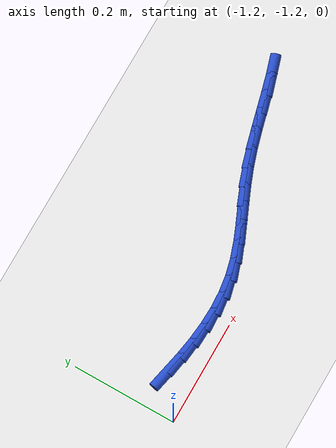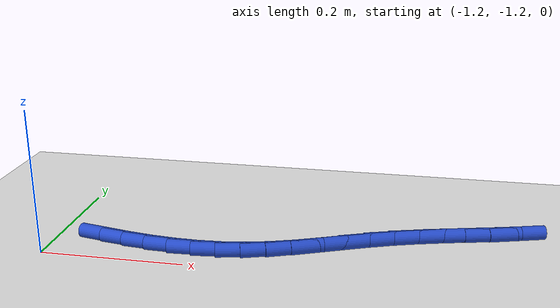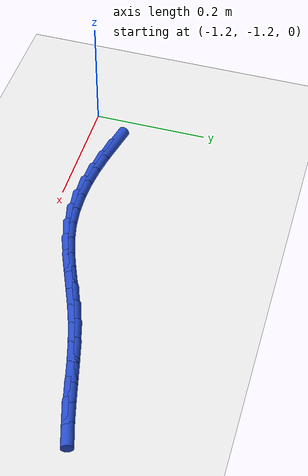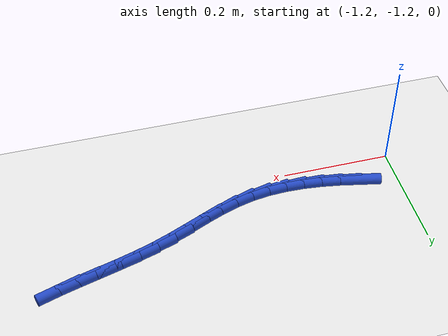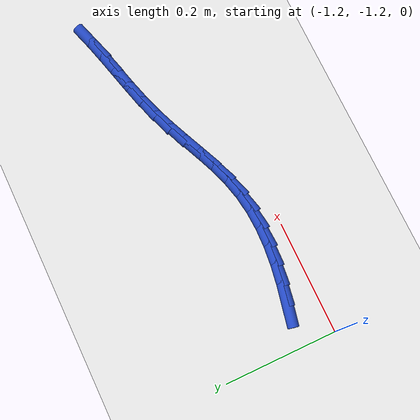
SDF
<sdf version="1.6">
 <world name="default">
  <model name="ground_plane">
   <static>1</static>
   <link name="link">
    <collision name="collision">
     <geometry><plane><normal>0 0 1</normal><size>100 100</size></plane></geometry>
     <surface><friction><ode><mu>100</mu><mu2>50</mu2></ode></friction></surface>
    </collision>
    <visual name="visual">
     <cast_shadows>0</cast_shadows>
     <geometry><plane><normal>0 0 1</normal><size>100 100</size></plane></geometry>
     <material>
      <script><uri>file://media/materials/scripts/gazebo.material</uri><name>Gazebo/WhiteGlow</name></script>
     </material>
    </visual>
   </link>
  </model>
  <model name="line">
   <link name="link_167">
    <pose>-1.1258394624215007 -1.1477894424663495 0.01 0 1.57 -0.21083913614385222</pose>
    <collision name="collision">
     <geometry><cylinder><radius>0.01</radius><length>0.08</length></cylinder></geometry>
    </collision>
    <visual name="visual">
     <material>
      <script><name>Gazebo/Blue</name><uri>file://media/materials/scripts/gazebo.material</uri></script>
     </material>
     <geometry><cylinder><radius>0.01</radius><length>0.08</length></cylinder></geometry>
    </visual>
   </link>
   <link name="link_168">
    <pose>-1.0916891835402964 -1.1550982803498684 0.01 0 1.57 -0.16399590243970757</pose>
    <collision name="collision">
     <geometry><cylinder><radius>0.01</radius><length>0.08</length></cylinder></geometry>
    </collision>
    <visual name="visual">
     <material>
      <script><name>Gazebo/Blue</name><uri>file://media/materials/scripts/gazebo.material</uri></script>
     </material>
     <geometry><cylinder><radius>0.01</radius><length>0.08</length></cylinder></geometry>
    </visual>
   </link>
   <link name="link_169">
    <pose>-1.0577367430883298 -1.160716801401946 0.01 0 1.57 -0.10597492901701144</pose>
    <collision name="collision">
     <geometry><cylinder><radius>0.01</radius><length>0.08</length></cylinder></geometry>
    </collision>
    <visual name="visual">
     <material>
      <script><name>Gazebo/Blue</name><uri>file://media/materials/scripts/gazebo.material</uri></script>
     </material>
     <geometry><cylinder><radius>0.01</radius><length>0.08</length></cylinder></geometry>
    </visual>
   </link>
   <link name="link_170">
    <pose>-1.0240424757178792 -1.1643009766331716 0.01 0 1.57 -0.036112323048636825</pose>
    <collision name="collision">
     <geometry><cylinder><radius>0.01</radius><length>0.08</length></cylinder></geometry>
    </collision>
    <visual name="visual">
     <material>
      <script><name>Gazebo/Blue</name><uri>file://media/materials/scripts/gazebo.material</uri></script>
     </material>
     <geometry><cylinder><radius>0.01</radius><length>0.08</length></cylinder></geometry>
    </visual>
   </link>
   <link name="link_171">
    <pose>-0.99066671608122 -1.1655067770541336 0.01 0 1.57 0.04592964778489907</pose>
    <collision name="collision">
     <geometry><cylinder><radius>0.01</radius><length>0.08</length></cylinder></geometry>
    </collision>
    <visual name="visual">
     <material>
      <script><name>Gazebo/Blue</name><uri>file://media/materials/scripts/gazebo.material</uri></script>
     </material>
     <geometry><cylinder><radius>0.01</radius><length>0.08</length></cylinder></geometry>
    </visual>
   </link>
   <link name="link_172">
    <pose>-0.957669798830629 -1.1639901736754215 0.01 0 1.57 0.13984753818209322</pose>
    <collision name="collision">
     <geometry><cylinder><radius>0.01</radius><length>0.08</length></cylinder></geometry>
    </collision>
    <visual name="visual">
     <material>
      <script><name>Gazebo/Blue</name><uri>file://media/materials/scripts/gazebo.material</uri></script>
     </material>
     <geometry><cylinder><radius>0.01</radius><length>0.08</length></cylinder></geometry>
    </visual>
   </link>
   <link name="link_173">
    <pose>-0.9251120586183819 -1.1594071375076243 0.01 0 1.57 0.2431048628951685</pose>
    <collision name="collision">
     <geometry><cylinder><radius>0.01</radius><length>0.08</length></cylinder></geometry>
    </collision>
    <visual name="visual">
     <material>
      <script><name>Gazebo/Blue</name><uri>file://media/materials/scripts/gazebo.material</uri></script>
     </material>
     <geometry><cylinder><radius>0.01</radius><length>0.08</length></cylinder></geometry>
    </visual>
   </link>
   <link name="link_174">
    <pose>-0.8930446364664046 -1.151454095590321 0.01 0 1.57 0.3319766092478405</pose>
    <collision name="collision">
     <geometry><cylinder><radius>0.01</radius><length>0.08</length></cylinder></geometry>
    </collision>
    <visual name="visual">
     <material>
      <script><name>Gazebo/Blue</name><uri>file://media/materials/scripts/gazebo.material</uri></script>
     </material>
     <geometry><cylinder><radius>0.01</radius><length>0.08</length></cylinder></geometry>
    </visual>
   </link>
   <link name="link_175">
    <pose>-0.861358822299574 -1.1405308903026377 0.01 0 1.57 0.38807013828108505</pose>
    <collision name="collision">
     <geometry><cylinder><radius>0.01</radius><length>0.08</length></cylinder></geometry>
    </collision>
    <visual name="visual">
     <material>
      <script><name>Gazebo/Blue</name><uri>file://media/materials/scripts/gazebo.material</uri></script>
     </material>
     <geometry><cylinder><radius>0.01</radius><length>0.08</length></cylinder></geometry>
    </visual>
   </link>
   <link name="link_176">
    <pose>-0.8298103540504403 -1.1276338525838148 0.01 0 1.57 0.4125308605642038</pose>
    <collision name="collision">
     <geometry><cylinder><radius>0.01</radius><length>0.08</length></cylinder></geometry>
    </collision>
    <visual name="visual">
     <material>
      <script><name>Gazebo/Blue</name><uri>file://media/materials/scripts/gazebo.material</uri></script>
     </material>
     <geometry><cylinder><radius>0.01</radius><length>0.08</length></cylinder></geometry>
    </visual>
   </link>
   <link name="link_177">
    <pose>-0.7981506772989307 -1.1137782016180546 0.01 0 1.57 0.40690658303316224</pose>
    <collision name="collision">
     <geometry><cylinder><radius>0.01</radius><length>0.08</length></cylinder></geometry>
    </collision>
    <visual name="visual">
     <material>
      <script><name>Gazebo/Blue</name><uri>file://media/materials/scripts/gazebo.material</uri></script>
     </material>
     <geometry><cylinder><radius>0.01</radius><length>0.08</length></cylinder></geometry>
    </visual>
   </link>
   <link name="link_178">
    <pose>-0.7661312376249707 -1.0999791565895596 0.01 0 1.57 0.37192676718759354</pose>
    <collision name="collision">
     <geometry><cylinder><radius>0.01</radius><length>0.08</length></cylinder></geometry>
    </collision>
    <visual name="visual">
     <material>
      <script><name>Gazebo/Blue</name><uri>file://media/materials/scripts/gazebo.material</uri></script>
     </material>
     <geometry><cylinder><radius>0.01</radius><length>0.08</length></cylinder></geometry>
    </visual>
   </link>
   <link name="link_179">
    <pose>-0.7335035646101004 -1.0872517066536922 0.01 0 1.57 0.318260301870163</pose>
    <collision name="collision">
     <geometry><cylinder><radius>0.01</radius><length>0.08</length></cylinder></geometry>
    </collision>
    <visual name="visual">
     <material>
      <script><name>Gazebo/Blue</name><uri>file://media/materials/scripts/gazebo.material</uri></script>
     </material>
     <geometry><cylinder><radius>0.01</radius><length>0.08</length></cylinder></geometry>
    </visual>
   </link>
   <link name="link_180">
    <pose>-0.7001466027289653 -1.076261929803942 0.01 0 1.57 0.27757515557616247</pose>
    <collision name="collision">
     <geometry><cylinder><radius>0.01</radius><length>0.08</length></cylinder></geometry>
    </collision>
    <visual name="visual">
     <material>
      <script><name>Gazebo/Blue</name><uri>file://media/materials/scripts/gazebo.material</uri></script>
     </material>
     <geometry><cylinder><radius>0.01</radius><length>0.08</length></cylinder></geometry>
    </visual>
   </link>
   <link name="link_181">
    <pose>-0.6663232090535118 -1.06662460314492 0.01 0 1.57 0.25544426228785283</pose>
    <collision name="collision">
     <geometry><cylinder><radius>0.01</radius><length>0.08</length></cylinder></geometry>
    </collision>
    <visual name="visual">
     <material>
      <script><name>Gazebo/Blue</name><uri>file://media/materials/scripts/gazebo.material</uri></script>
     </material>
     <geometry><cylinder><radius>0.01</radius><length>0.08</length></cylinder></geometry>
    </visual>
   </link>
   <link name="link_182">
    <pose>-0.6323682580900998 -1.057757292245725 0.01 0 1.57 0.2517104821176607</pose>
    <collision name="collision">
     <geometry><cylinder><radius>0.01</radius><length>0.08</length></cylinder></geometry>
    </collision>
    <visual name="visual">
     <material>
      <script><name>Gazebo/Blue</name><uri>file://media/materials/scripts/gazebo.material</uri></script>
     </material>
     <geometry><cylinder><radius>0.01</radius><length>0.08</length></cylinder></geometry>
    </visual>
   </link>
   <link name="link_183">
    <pose>-0.5986166243450922 -1.0490775626754574 0.01 0 1.57 0.2667107764674325</pose>
    <collision name="collision">
     <geometry><cylinder><radius>0.01</radius><length>0.08</length></cylinder></geometry>
    </collision>
    <visual name="visual">
     <material>
      <script><name>Gazebo/Blue</name><uri>file://media/materials/scripts/gazebo.material</uri></script>
     </material>
     <geometry><cylinder><radius>0.01</radius><length>0.08</length></cylinder></geometry>
    </visual>
   </link>
   <link name="link_184">
    <pose>-0.5654031823248493 -1.0400029800032153 0.01 0 1.57 0.3013489396452484</pose>
    <collision name="collision">
     <geometry><cylinder><radius>0.01</radius><length>0.08</length></cylinder></geometry>
    </collision>
    <visual name="visual">
     <material>
      <script><name>Gazebo/Blue</name><uri>file://media/materials/scripts/gazebo.material</uri></script>
     </material>
     <geometry><cylinder><radius>0.01</radius><length>0.08</length></cylinder></geometry>
    </visual>
   </link>
  </model>
 </world>
</sdf>
